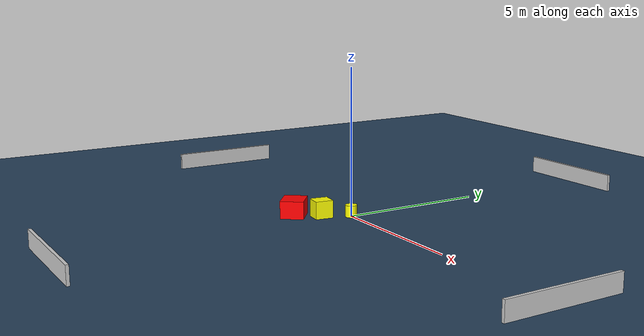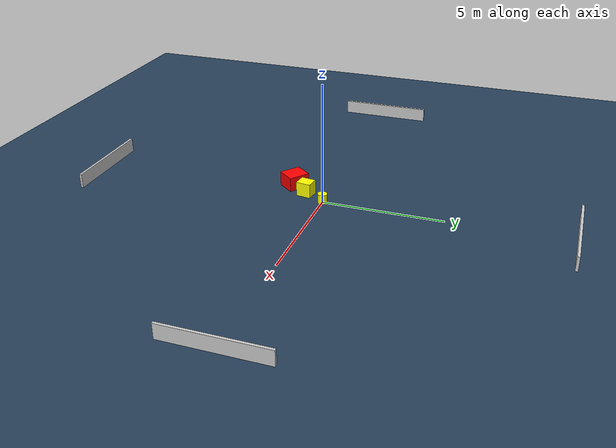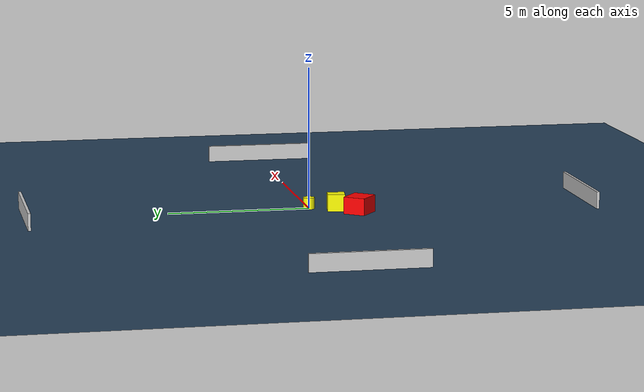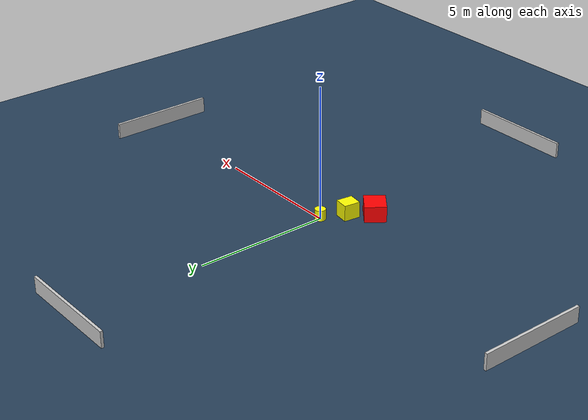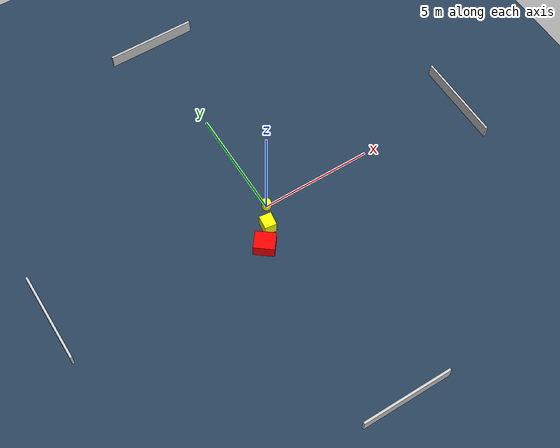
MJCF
<?xml version="1.0" ?>
<mujoco model="generated_environment">
  <option timestep="0.01" integrator="RK4" cone="elliptic"/>
  <default>
    <geom density="1"/>
  </default>
  <asset>
    <texture builtin="gradient" height="3072" name="skybox" rgb1="0.3 0.5 0.7" rgb2="0 0 0" type="skybox" width="512"/>
    <texture builtin="checker" height="300" name="groundplane" rgb1="0.2 0.3 0.4" rgb2="0.1 0.2 0.3" type="2d" width="300"/>
    <material name="groundplane" reflectance="0.2" texrepeat="5 5" texture="groundplane"/>
  </asset>
  <worldbody>
    <light dir="0 0 -1" directional="true" pos="0 0 1.5"/>
    <geom condim="3" friction="0.5 0.005 0.001" material="groundplane" name="floor" pos="0 0 0" size="0 0 0.05" type="plane"/>
    <body name="walls">
      <geom name="wall_1" condim="4" pos="-10.0 0.0 0.3" rgba="0.800000011920929 0.800000011920929 0.800000011920929 1.0" size="0.05 2.0 0.3" type="box"/>
      <geom name="wall_2" condim="4" pos="10.0 0.0 0.3" rgba="0.800000011920929 0.800000011920929 0.800000011920929 1.0" size="0.05 2.0 0.3" type="box"/>
      <geom name="wall_3" condim="4" pos="0.0 -10.0 0.3" rgba="0.800000011920929 0.800000011920929 0.800000011920929 1.0" size="2.0 0.05 0.3" type="box"/>
      <geom name="wall_4" condim="4" pos="0.0 10.0 0.3" rgba="0.800000011920929 0.800000011920929 0.800000011920929 1.0" size="2.0 0.05 0.3" type="box"/>
    </body>
    <body name="robot">
      <joint name="joint_x" type="slide" pos="0 0 0" axis="1 0 0"/>
      <joint name="joint_y" type="slide" pos="0 0 0" axis="0 1 0"/>
      <geom name="robot" type="cylinder" pos="0.0 0.0 0.2" size="0.2 0.2 0.0" mass="5.0" friction="1.0 0.005 0.0001" condim="4" rgba="1.0 1.0 0.0 1.0"/>
    </body>
    <body name="obstacle_1_movable">
      <geom name="obstacle_1_movable" condim="4" pos="-0.4711885739303689 -0.8759194353578182 0.3" euler="0 0 82.13487958322244" friction="0.0 0.005 0.001" rgba="1.0 1.0 0.0 1.0" size="0.3040531560991623 0.26583527786989275 0.3" type="box" mass="0.1"/>
      <joint type="free"/>
    </body>
    <body name="obstacle_2_static">
      <geom name="obstacle_2_static" condim="4" pos="-1.0672773672953224 -1.5952508613881982 0.3" euler="0 0 321.95611827893043" friction="0.0 0.005 0.001" rgba="1.0 0.0 0.0 1.0" size="0.44966093103479227 0.39422310054611465 0.3" type="box"/>
    </body>
  </worldbody>
  <actuator>
    <motor name="actuator_x" joint="joint_x" gear="1" ctrlrange="-1 1"/>
    <motor name="actuator_y" joint="joint_y" gear="1" ctrlrange="-1 1"/>
  </actuator>
</mujoco>
